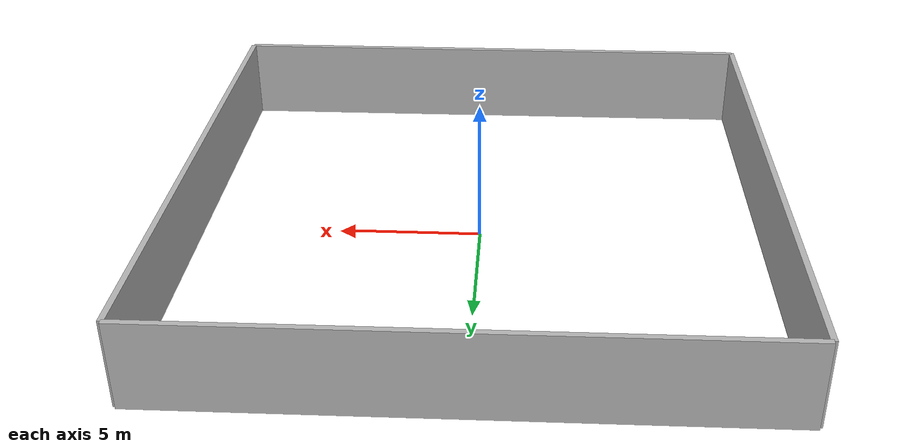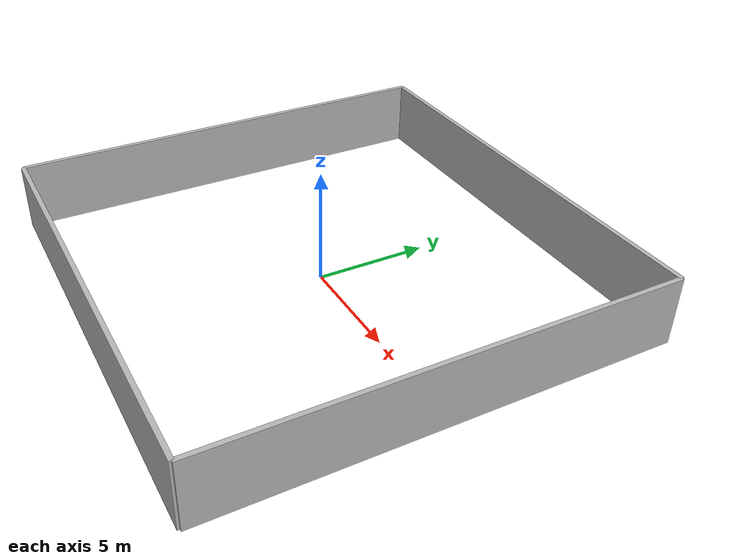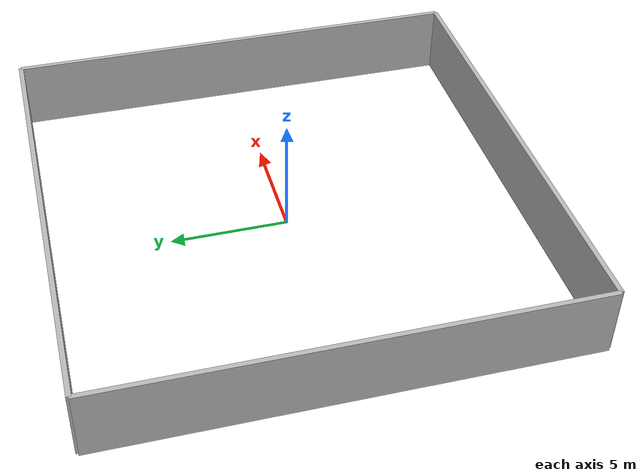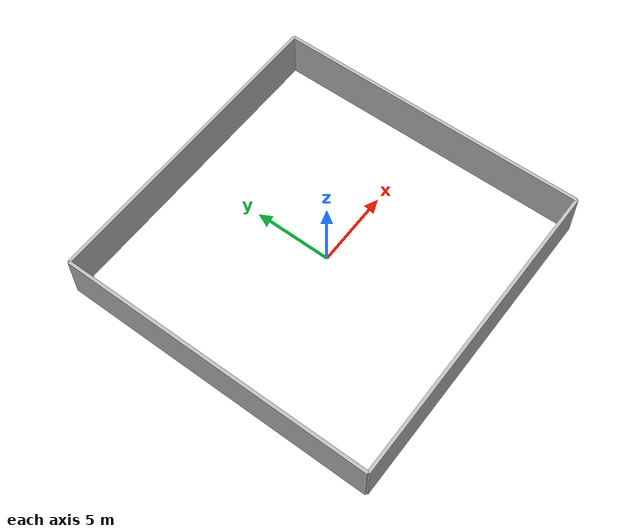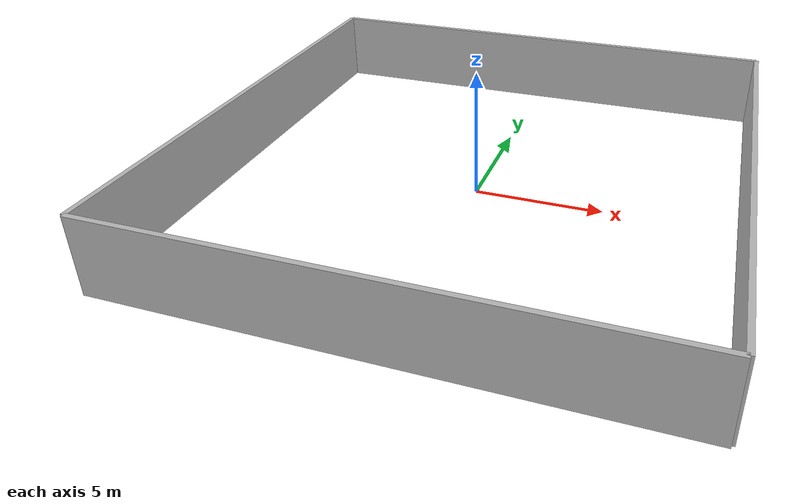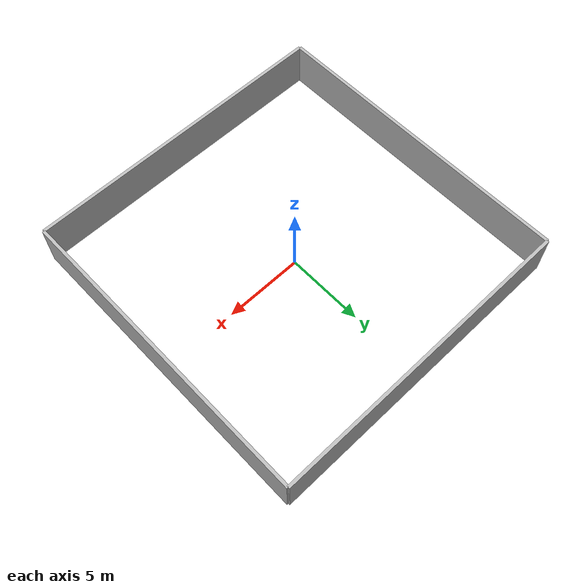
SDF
<?xml version="1.0" ?>
<sdf version="1.4">
  <world name="square">
    <model name="wall_1">
        <static>1</static>
        <pose>-10 0 1.5 0 0 0</pose>
        <link name="wall_1">
            <pose>0 0 0 0 0 0</pose>
            <inertial>
                <mass>5</mass>
                <inertia>
                    <ixx>0.0</ixx>
                    <ixy>0.0</ixy>
                    <ixz>0.0</ixz>
                    <iyy>0.0</iyy>
                    <iyz>0.0</iyz>
                    <izz>0.0</izz>
                </inertia>
            </inertial>
            <collision name="wall_1_collision">
                <geometry>
                    <box>
                        <size>0.2 20.0 3.0</size>
                    </box>
                </geometry>
            </collision>
            <visual name="wall_1_visual">
               <geometry>
                   <box>
                       <size>0.2 20.0 3.0</size>
                   </box>
               </geometry>
            </visual>
        </link>
    </model>

    <model name="wall_2">
        <static>1</static>
        <pose>0 10.0 1.5 0 0 0</pose>
        <link name="wall_2">
            <pose>0 0 0 0 0 0</pose>
            <inertial>
                <mass>5</mass>
                <inertia>
                    <ixx>0.0</ixx>
                    <ixy>0.0</ixy>
                    <ixz>0.0</ixz>
                    <iyy>0.0</iyy>
                    <iyz>0.0</iyz>
                    <izz>0.0</izz>
                </inertia>
            </inertial>
            <collision name="wall_2_collision">
                <geometry>
                    <box>
                        <size>20.0 0.2 3.0</size>
                    </box>
                </geometry>
            </collision>
            <visual name="wall_2_visual">
               <geometry>
                   <box>
                       <size>20.0 0.2 3.0</size>
                   </box>
               </geometry>
            </visual>
        </link>
    </model>

    <model name="wall_3">
        <static>1</static>
        <pose>10.0 0.0 1.5 0 0 0</pose>
        <link name="wall_3">
            <pose>0 0 0 0 0 0</pose>
            <inertial>
                <mass>5</mass>
                <inertia>
                    <ixx>0.0</ixx>
                    <ixy>0.0</ixy>
                    <ixz>0.0</ixz>
                    <iyy>0.0</iyy>
                    <iyz>0.0</iyz>
                    <izz>0.0</izz>
                </inertia>
            </inertial>
            <collision name="wall_3_collision">
                <geometry>
                    <box>
                        <size>0.2 20.0 3.0</size>
                    </box>
                </geometry>
            </collision>
            <visual name="wall_3_visual">
               <geometry>
                   <box>
                       <size>0.2 20.0 3.0</size>
                   </box>
               </geometry>
            </visual>
        </link>
    </model>

    <model name="wall_4">
        <static>1</static>
        <pose>0.0 -10.0 1.5 0 0 0</pose>
        <link name="wall_4">
            <pose>0 0 0 0 0 0</pose>
            <inertial>
                <mass>5</mass>
                <inertia>
                    <ixx>0.0</ixx>
                    <ixy>0.0</ixy>
                    <ixz>0.0</ixz>
                    <iyy>0.0</iyy>
                    <iyz>0.0</iyz>
                    <izz>0.0</izz>
                </inertia>
            </inertial>
            <collision name="wall_4_collision">
                <geometry>
                    <box>
                        <size>20.0 0.2 3.0</size>
                    </box>
                </geometry>
            </collision>
            <visual name="wall_4_visual">
               <geometry>
                   <box>
                       <size>20.0 0.2 3.0</size>
                   </box>
               </geometry>
            </visual>
        </link>
    </model>

  </world>
</sdf>
